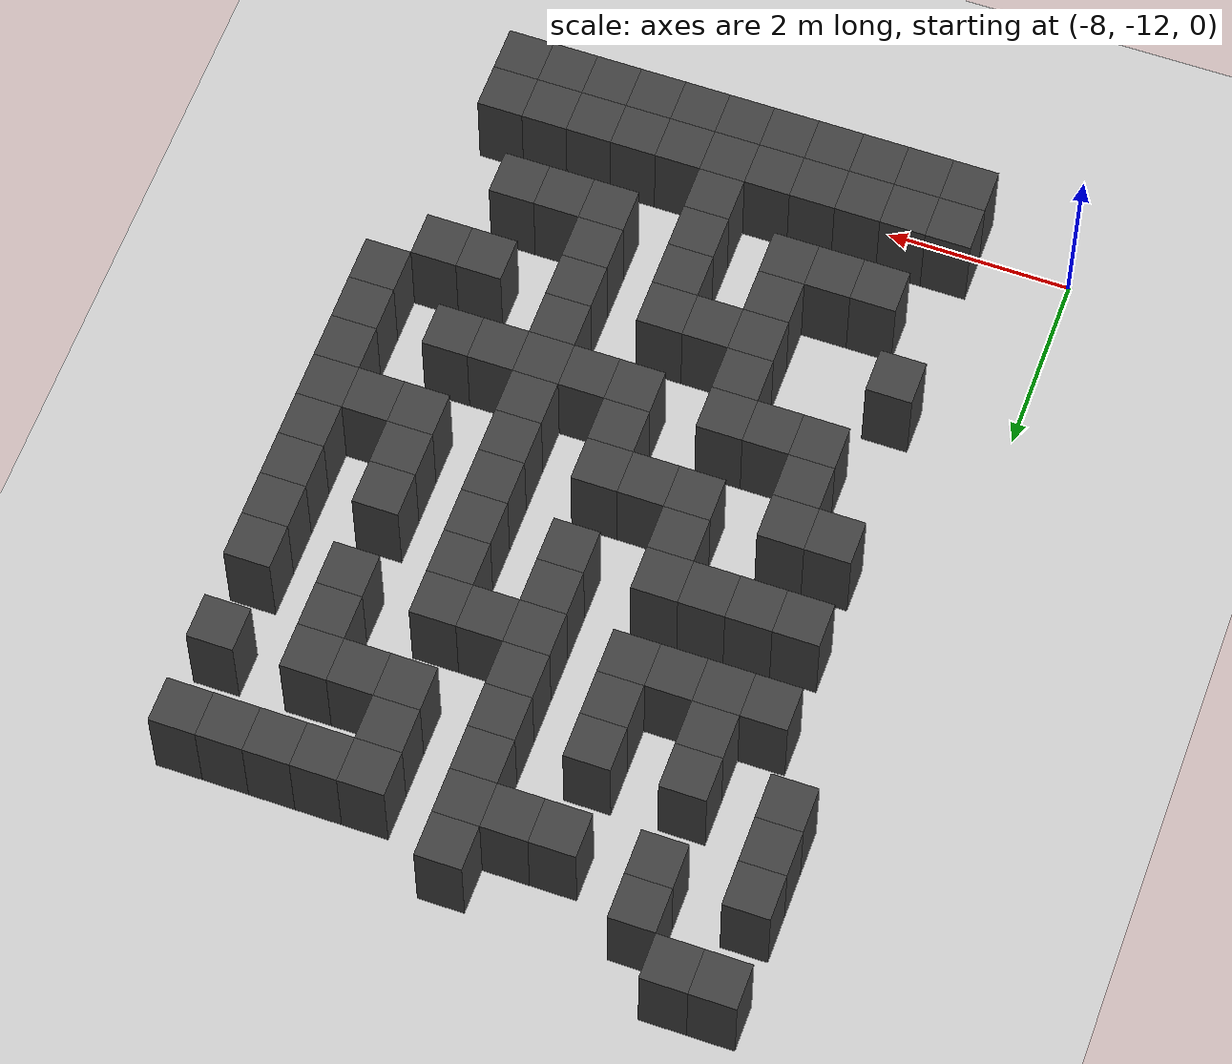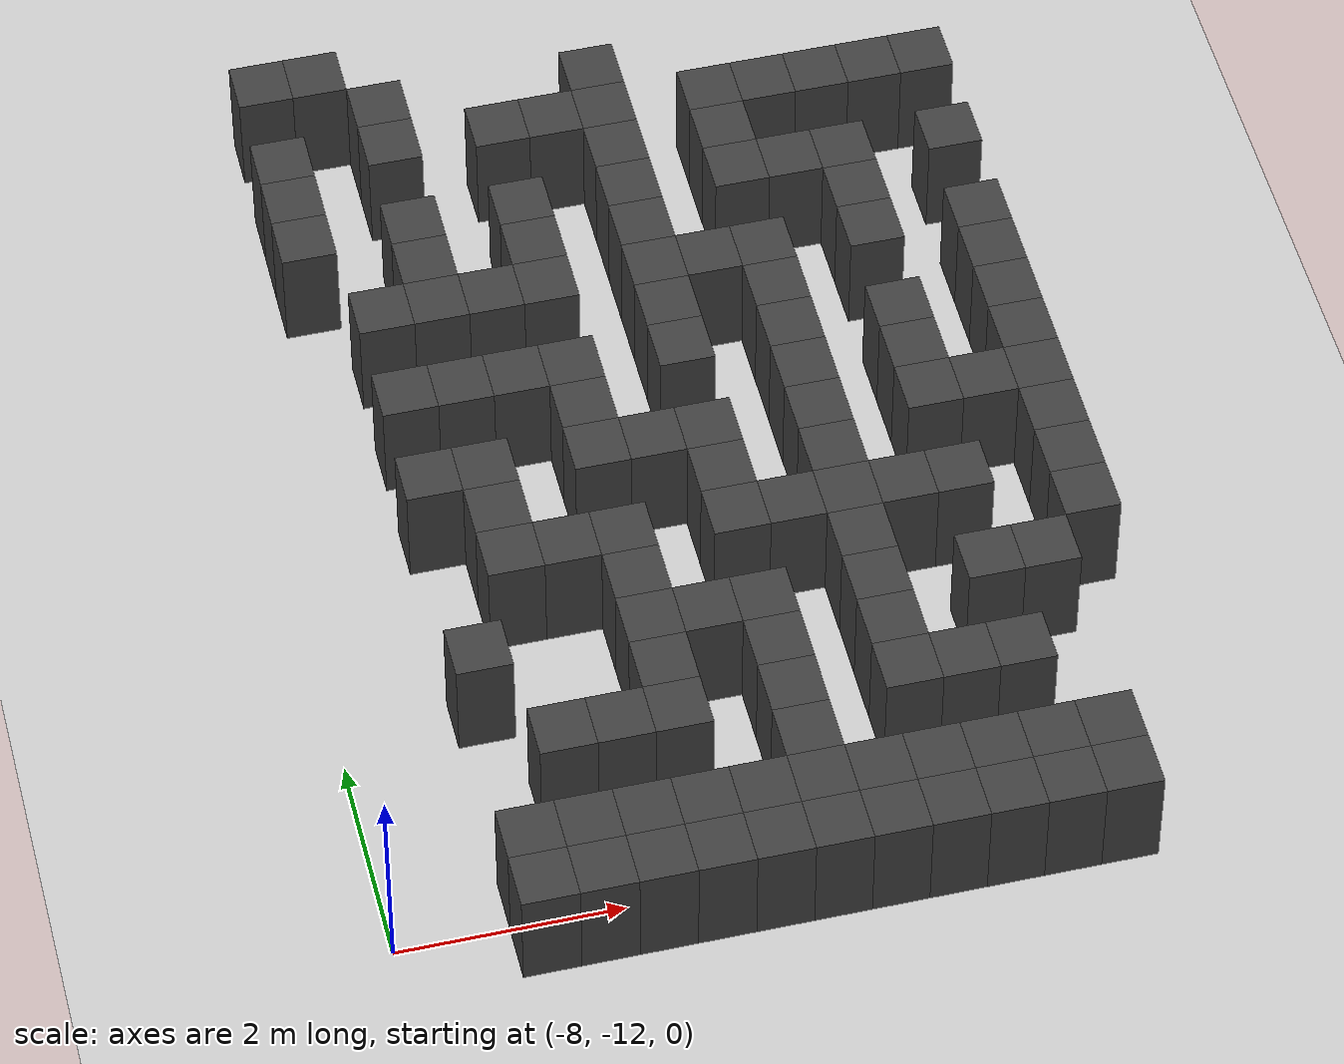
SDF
<sdf version="1.7">
 <world name="map_18313">
  <model name="ground_plane">
   <static>true</static>
   <link name="link">
    <collision name="collision">
     <geometry><plane><normal>0 0 1</normal><size>200 200</size></plane></geometry>
    </collision>
    <visual name="visual">
     <geometry><plane><normal>0 0 1</normal><size>200 200</size></plane></geometry>
     <material><ambient>0.8 0.8 0.8 1</ambient><diffuse>0.8 0.8 0.8 1</diffuse></material>
    </visual>
   </link>
  </model>
  <model name="maze_environment">
   <static>true</static>
   <link name="wall_760">
    <pose>-7.250 -2.750 0.500 0 0 0</pose>
    <collision name="col"><geometry><box><size>0.5 0.5 1.0</size></box></geometry></collision>
    <visual name="vis">
     <geometry><box><size>0.5 0.5 1.0</size></box></geometry>
     <material><ambient>0.15 0.15 0.15 1</ambient><diffuse>0.25 0.25 0.25 1</diffuse></material>
    </visual>
   </link>
   <link name="wall_761">
    <pose>-6.750 -2.750 0.500 0 0 0</pose>
    <collision name="col"><geometry><box><size>0.5 0.5 1.0</size></box></geometry></collision>
    <visual name="vis">
     <geometry><box><size>0.5 0.5 1.0</size></box></geometry>
     <material><ambient>0.15 0.15 0.15 1</ambient><diffuse>0.25 0.25 0.25 1</diffuse></material>
    </visual>
   </link>
   <link name="wall_796">
    <pose>-6.250 -3.250 0.500 0 0 0</pose>
    <collision name="col"><geometry><box><size>0.5 0.5 1.0</size></box></geometry></collision>
    <visual name="vis">
     <geometry><box><size>0.5 0.5 1.0</size></box></geometry>
     <material><ambient>0.15 0.15 0.15 1</ambient><diffuse>0.25 0.25 0.25 1</diffuse></material>
    </visual>
   </link>
   <link name="wall_797">
    <pose>-4.250 -3.250 0.500 0 0 0</pose>
    <collision name="col"><geometry><box><size>0.5 0.5 1.0</size></box></geometry></collision>
    <visual name="vis">
     <geometry><box><size>0.5 0.5 1.0</size></box></geometry>
     <material><ambient>0.15 0.15 0.15 1</ambient><diffuse>0.25 0.25 0.25 1</diffuse></material>
    </visual>
   </link>
   <link name="wall_811">
    <pose>-7.250 -3.750 0.500 0 0 0</pose>
    <collision name="col"><geometry><box><size>0.5 0.5 1.0</size></box></geometry></collision>
    <visual name="vis">
     <geometry><box><size>0.5 0.5 1.0</size></box></geometry>
     <material><ambient>0.15 0.15 0.15 1</ambient><diffuse>0.25 0.25 0.25 1</diffuse></material>
    </visual>
   </link>
   <link name="wall_812">
    <pose>-6.250 -3.750 0.500 0 0 0</pose>
    <collision name="col"><geometry><box><size>0.5 0.5 1.0</size></box></geometry></collision>
    <visual name="vis">
     <geometry><box><size>0.5 0.5 1.0</size></box></geometry>
     <material><ambient>0.15 0.15 0.15 1</ambient><diffuse>0.25 0.25 0.25 1</diffuse></material>
    </visual>
   </link>
   <link name="wall_813">
    <pose>-5.250 -3.750 0.500 0 0 0</pose>
    <collision name="col"><geometry><box><size>0.5 0.5 1.0</size></box></geometry></collision>
    <visual name="vis">
     <geometry><box><size>0.5 0.5 1.0</size></box></geometry>
     <material><ambient>0.15 0.15 0.15 1</ambient><diffuse>0.25 0.25 0.25 1</diffuse></material>
    </visual>
   </link>
   <link name="wall_814">
    <pose>-4.750 -3.750 0.500 0 0 0</pose>
    <collision name="col"><geometry><box><size>0.5 0.5 1.0</size></box></geometry></collision>
    <visual name="vis">
     <geometry><box><size>0.5 0.5 1.0</size></box></geometry>
     <material><ambient>0.15 0.15 0.15 1</ambient><diffuse>0.25 0.25 0.25 1</diffuse></material>
    </visual>
   </link>
   <link name="wall_815">
    <pose>-4.250 -3.750 0.500 0 0 0</pose>
    <collision name="col"><geometry><box><size>0.5 0.5 1.0</size></box></geometry></collision>
    <visual name="vis">
     <geometry><box><size>0.5 0.5 1.0</size></box></geometry>
     <material><ambient>0.15 0.15 0.15 1</ambient><diffuse>0.25 0.25 0.25 1</diffuse></material>
    </visual>
   </link>
   <link name="wall_816">
    <pose>-3.250 -3.750 0.500 0 0 0</pose>
    <collision name="col"><geometry><box><size>0.5 0.5 1.0</size></box></geometry></collision>
    <visual name="vis">
     <geometry><box><size>0.5 0.5 1.0</size></box></geometry>
     <material><ambient>0.15 0.15 0.15 1</ambient><diffuse>0.25 0.25 0.25 1</diffuse></material>
    </visual>
   </link>
   <link name="wall_817">
    <pose>-2.750 -3.750 0.500 0 0 0</pose>
    <collision name="col"><geometry><box><size>0.5 0.5 1.0</size></box></geometry></collision>
    <visual name="vis">
     <geometry><box><size>0.5 0.5 1.0</size></box></geometry>
     <material><ambient>0.15 0.15 0.15 1</ambient><diffuse>0.25 0.25 0.25 1</diffuse></material>
    </visual>
   </link>
   <link name="wall_818">
    <pose>-2.250 -3.750 0.500 0 0 0</pose>
    <collision name="col"><geometry><box><size>0.5 0.5 1.0</size></box></geometry></collision>
    <visual name="vis">
     <geometry><box><size>0.5 0.5 1.0</size></box></geometry>
     <material><ambient>0.15 0.15 0.15 1</ambient><diffuse>0.25 0.25 0.25 1</diffuse></material>
    </visual>
   </link>
   <link name="wall_819">
    <pose>-1.750 -3.750 0.500 0 0 0</pose>
    <collision name="col"><geometry><box><size>0.5 0.5 1.0</size></box></geometry></collision>
    <visual name="vis">
     <geometry><box><size>0.5 0.5 1.0</size></box></geometry>
     <material><ambient>0.15 0.15 0.15 1</ambient><diffuse>0.25 0.25 0.25 1</diffuse></material>
    </visual>
   </link>
   <link name="wall_820">
    <pose>-1.250 -3.750 0.500 0 0 0</pose>
    <collision name="col"><geometry><box><size>0.5 0.5 1.0</size></box></geometry></collision>
    <visual name="vis">
     <geometry><box><size>0.5 0.5 1.0</size></box></geometry>
     <material><ambient>0.15 0.15 0.15 1</ambient><diffuse>0.25 0.25 0.25 1</diffuse></material>
    </visual>
   </link>
   <link name="wall_844">
    <pose>-7.250 -4.250 0.500 0 0 0</pose>
    <collision name="col"><geometry><box><size>0.5 0.5 1.0</size></box></geometry></collision>
    <visual name="vis">
     <geometry><box><size>0.5 0.5 1.0</size></box></geometry>
     <material><ambient>0.15 0.15 0.15 1</ambient><diffuse>0.25 0.25 0.25 1</diffuse></material>
    </visual>
   </link>
   <link name="wall_845">
    <pose>-4.250 -4.250 0.500 0 0 0</pose>
    <collision name="col"><geometry><box><size>0.5 0.5 1.0</size></box></geometry></collision>
    <visual name="vis">
     <geometry><box><size>0.5 0.5 1.0</size></box></geometry>
     <material><ambient>0.15 0.15 0.15 1</ambient><diffuse>0.25 0.25 0.25 1</diffuse></material>
    </visual>
   </link>
   <link name="wall_846">
    <pose>-3.250 -4.250 0.500 0 0 0</pose>
    <collision name="col"><geometry><box><size>0.5 0.5 1.0</size></box></geometry></collision>
    <visual name="vis">
     <geometry><box><size>0.5 0.5 1.0</size></box></geometry>
     <material><ambient>0.15 0.15 0.15 1</ambient><diffuse>0.25 0.25 0.25 1</diffuse></material>
    </visual>
   </link>
   <link name="wall_861">
    <pose>-7.250 -4.750 0.500 0 0 0</pose>
    <collision name="col"><geometry><box><size>0.5 0.5 1.0</size></box></geometry></collision>
    <visual name="vis">
     <geometry><box><size>0.5 0.5 1.0</size></box></geometry>
     <material><ambient>0.15 0.15 0.15 1</ambient><diffuse>0.25 0.25 0.25 1</diffuse></material>
    </visual>
   </link>
   <link name="wall_862">
    <pose>-6.250 -4.750 0.500 0 0 0</pose>
    <collision name="col"><geometry><box><size>0.5 0.5 1.0</size></box></geometry></collision>
    <visual name="vis">
     <geometry><box><size>0.5 0.5 1.0</size></box></geometry>
     <material><ambient>0.15 0.15 0.15 1</ambient><diffuse>0.25 0.25 0.25 1</diffuse></material>
    </visual>
   </link>
   <link name="wall_863">
    <pose>-5.250 -4.750 0.500 0 0 0</pose>
    <collision name="col"><geometry><box><size>0.5 0.5 1.0</size></box></geometry></collision>
    <visual name="vis">
     <geometry><box><size>0.5 0.5 1.0</size></box></geometry>
     <material><ambient>0.15 0.15 0.15 1</ambient><diffuse>0.25 0.25 0.25 1</diffuse></material>
    </visual>
   </link>
   <link name="wall_864">
    <pose>-4.250 -4.750 0.500 0 0 0</pose>
    <collision name="col"><geometry><box><size>0.5 0.5 1.0</size></box></geometry></collision>
    <visual name="vis">
     <geometry><box><size>0.5 0.5 1.0</size></box></geometry>
     <material><ambient>0.15 0.15 0.15 1</ambient><diffuse>0.25 0.25 0.25 1</diffuse></material>
    </visual>
   </link>
   <link name="wall_865">
    <pose>-3.250 -4.750 0.500 0 0 0</pose>
    <collision name="col"><geometry><box><size>0.5 0.5 1.0</size></box></geometry></collision>
    <visual name="vis">
     <geometry><box><size>0.5 0.5 1.0</size></box></geometry>
     <material><ambient>0.15 0.15 0.15 1</ambient><diffuse>0.25 0.25 0.25 1</diffuse></material>
    </visual>
   </link>
   <link name="wall_866">
    <pose>-2.750 -4.750 0.500 0 0 0</pose>
    <collision name="col"><geometry><box><size>0.5 0.5 1.0</size></box></geometry></collision>
    <visual name="vis">
     <geometry><box><size>0.5 0.5 1.0</size></box></geometry>
     <material><ambient>0.15 0.15 0.15 1</ambient><diffuse>0.25 0.25 0.25 1</diffuse></material>
    </visual>
   </link>
   <link name="wall_867">
    <pose>-2.250 -4.750 0.500 0 0 0</pose>
    <collision name="col"><geometry><box><size>0.5 0.5 1.0</size></box></geometry></collision>
    <visual name="vis">
     <geometry><box><size>0.5 0.5 1.0</size></box></geometry>
     <material><ambient>0.15 0.15 0.15 1</ambient><diffuse>0.25 0.25 0.25 1</diffuse></material>
    </visual>
   </link>
   <link name="wall_868">
    <pose>-1.250 -4.750 0.500 0 0 0</pose>
    <collision name="col"><geometry><box><size>0.5 0.5 1.0</size></box></geometry></collision>
    <visual name="vis">
     <geometry><box><size>0.5 0.5 1.0</size></box></geometry>
     <material><ambient>0.15 0.15 0.15 1</ambient><diffuse>0.25 0.25 0.25 1</diffuse></material>
    </visual>
   </link>
   <link name="wall_893">
    <pose>-6.250 -5.250 0.500 0 0 0</pose>
    <collision name="col"><geometry><box><size>0.5 0.5 1.0</size></box></geometry></collision>
    <visual name="vis">
     <geometry><box><size>0.5 0.5 1.0</size></box></geometry>
     <material><ambient>0.15 0.15 0.15 1</ambient><diffuse>0.25 0.25 0.25 1</diffuse></material>
    </visual>
   </link>
   <link name="wall_894">
    <pose>-5.250 -5.250 0.500 0 0 0</pose>
    <collision name="col"><geometry><box><size>0.5 0.5 1.0</size></box></geometry></collision>
    <visual name="vis">
     <geometry><box><size>0.5 0.5 1.0</size></box></geometry>
     <material><ambient>0.15 0.15 0.15 1</ambient><diffuse>0.25 0.25 0.25 1</diffuse></material>
    </visual>
   </link>
   <link name="wall_895">
    <pose>-4.250 -5.250 0.500 0 0 0</pose>
    <collision name="col"><geometry><box><size>0.5 0.5 1.0</size></box></geometry></collision>
    <visual name="vis">
     <geometry><box><size>0.5 0.5 1.0</size></box></geometry>
     <material><ambient>0.15 0.15 0.15 1</ambient><diffuse>0.25 0.25 0.25 1</diffuse></material>
    </visual>
   </link>
   <link name="wall_896">
    <pose>-2.250 -5.250 0.500 0 0 0</pose>
    <collision name="col"><geometry><box><size>0.5 0.5 1.0</size></box></geometry></collision>
    <visual name="vis">
     <geometry><box><size>0.5 0.5 1.0</size></box></geometry>
     <material><ambient>0.15 0.15 0.15 1</ambient><diffuse>0.25 0.25 0.25 1</diffuse></material>
    </visual>
   </link>
   <link name="wall_911">
    <pose>-6.750 -5.750 0.500 0 0 0</pose>
    <collision name="col"><geometry><box><size>0.5 0.5 1.0</size></box></geometry></collision>
    <visual name="vis">
     <geometry><box><size>0.5 0.5 1.0</size></box></geometry>
     <material><ambient>0.15 0.15 0.15 1</ambient><diffuse>0.25 0.25 0.25 1</diffuse></material>
    </visual>
   </link>
   <link name="wall_912">
    <pose>-6.250 -5.750 0.500 0 0 0</pose>
    <collision name="col"><geometry><box><size>0.5 0.5 1.0</size></box></geometry></collision>
    <visual name="vis">
     <geometry><box><size>0.5 0.5 1.0</size></box></geometry>
     <material><ambient>0.15 0.15 0.15 1</ambient><diffuse>0.25 0.25 0.25 1</diffuse></material>
    </visual>
   </link>
   <link name="wall_913">
    <pose>-5.750 -5.750 0.500 0 0 0</pose>
    <collision name="col"><geometry><box><size>0.5 0.5 1.0</size></box></geometry></collision>
    <visual name="vis">
     <geometry><box><size>0.5 0.5 1.0</size></box></geometry>
     <material><ambient>0.15 0.15 0.15 1</ambient><diffuse>0.25 0.25 0.25 1</diffuse></material>
    </visual>
   </link>
   <link name="wall_914">
    <pose>-5.250 -5.750 0.500 0 0 0</pose>
    <collision name="col"><geometry><box><size>0.5 0.5 1.0</size></box></geometry></collision>
    <visual name="vis">
     <geometry><box><size>0.5 0.5 1.0</size></box></geometry>
     <material><ambient>0.15 0.15 0.15 1</ambient><diffuse>0.25 0.25 0.25 1</diffuse></material>
    </visual>
   </link>
   <link name="wall_915">
    <pose>-4.250 -5.750 0.500 0 0 0</pose>
    <collision name="col"><geometry><box><size>0.5 0.5 1.0</size></box></geometry></collision>
    <visual name="vis">
     <geometry><box><size>0.5 0.5 1.0</size></box></geometry>
     <material><ambient>0.15 0.15 0.15 1</ambient><diffuse>0.25 0.25 0.25 1</diffuse></material>
    </visual>
   </link>
   <link name="wall_916">
    <pose>-3.750 -5.750 0.500 0 0 0</pose>
    <collision name="col"><geometry><box><size>0.5 0.5 1.0</size></box></geometry></collision>
    <visual name="vis">
     <geometry><box><size>0.5 0.5 1.0</size></box></geometry>
     <material><ambient>0.15 0.15 0.15 1</ambient><diffuse>0.25 0.25 0.25 1</diffuse></material>
    </visual>
   </link>
   <link name="wall_917">
    <pose>-3.250 -5.750 0.500 0 0 0</pose>
    <collision name="col"><geometry><box><size>0.5 0.5 1.0</size></box></geometry></collision>
    <visual name="vis">
     <geometry><box><size>0.5 0.5 1.0</size></box></geometry>
     <material><ambient>0.15 0.15 0.15 1</ambient><diffuse>0.25 0.25 0.25 1</diffuse></material>
    </visual>
   </link>
   <link name="wall_918">
    <pose>-2.250 -5.750 0.500 0 0 0</pose>
    <collision name="col"><geometry><box><size>0.5 0.5 1.0</size></box></geometry></collision>
    <visual name="vis">
     <geometry><box><size>0.5 0.5 1.0</size></box></geometry>
     <material><ambient>0.15 0.15 0.15 1</ambient><diffuse>0.25 0.25 0.25 1</diffuse></material>
    </visual>
   </link>
   <link name="wall_919">
    <pose>-1.250 -5.750 0.500 0 0 0</pose>
    <collision name="col"><geometry><box><size>0.5 0.5 1.0</size></box></geometry></collision>
    <visual name="vis">
     <geometry><box><size>0.5 0.5 1.0</size></box></geometry>
     <material><ambient>0.15 0.15 0.15 1</ambient><diffuse>0.25 0.25 0.25 1</diffuse></material>
    </visual>
   </link>
   <link name="wall_944">
    <pose>-4.250 -6.250 0.500 0 0 0</pose>
    <collision name="col"><geometry><box><size>0.5 0.5 1.0</size></box></geometry></collision>
    <visual name="vis">
     <geometry><box><size>0.5 0.5 1.0</size></box></geometry>
     <material><ambient>0.15 0.15 0.15 1</ambient><diffuse>0.25 0.25 0.25 1</diffuse></material>
    </visual>
   </link>
   <link name="wall_945">
    <pose>-3.250 -6.250 0.500 0 0 0</pose>
    <collision name="col"><geometry><box><size>0.5 0.5 1.0</size></box></geometry></collision>
    <visual name="vis">
     <geometry><box><size>0.5 0.5 1.0</size></box></geometry>
     <material><ambient>0.15 0.15 0.15 1</ambient><diffuse>0.25 0.25 0.25 1</diffuse></material>
    </visual>
   </link>
   <link name="wall_946">
    <pose>-1.250 -6.250 0.500 0 0 0</pose>
    <collision name="col"><geometry><box><size>0.5 0.5 1.0</size></box></geometry></collision>
    <visual name="vis">
     <geometry><box><size>0.5 0.5 1.0</size></box></geometry>
     <material><ambient>0.15 0.15 0.15 1</ambient><diffuse>0.25 0.25 0.25 1</diffuse></material>
    </visual>
   </link>
   <link name="wall_962">
    <pose>-6.750 -6.750 0.500 0 0 0</pose>
    <collision name="col"><geometry><box><size>0.5 0.5 1.0</size></box></geometry></collision>
    <visual name="vis">
     <geometry><box><size>0.5 0.5 1.0</size></box></geometry>
     <material><ambient>0.15 0.15 0.15 1</ambient><diffuse>0.25 0.25 0.25 1</diffuse></material>
    </visual>
   </link>
   <link name="wall_963">
    <pose>-6.250 -6.750 0.500 0 0 0</pose>
    <collision name="col"><geometry><box><size>0.5 0.5 1.0</size></box></geometry></collision>
    <visual name="vis">
     <geometry><box><size>0.5 0.5 1.0</size></box></geometry>
     <material><ambient>0.15 0.15 0.15 1</ambient><diffuse>0.25 0.25 0.25 1</diffuse></material>
    </visual>
   </link>
   <link name="wall_964">
    <pose>-5.750 -6.750 0.500 0 0 0</pose>
    <collision name="col"><geometry><box><size>0.5 0.5 1.0</size></box></geometry></collision>
    <visual name="vis">
     <geometry><box><size>0.5 0.5 1.0</size></box></geometry>
     <material><ambient>0.15 0.15 0.15 1</ambient><diffuse>0.25 0.25 0.25 1</diffuse></material>
    </visual>
   </link>
   <link name="wall_965">
    <pose>-5.250 -6.750 0.500 0 0 0</pose>
    <collision name="col"><geometry><box><size>0.5 0.5 1.0</size></box></geometry></collision>
    <visual name="vis">
     <geometry><box><size>0.5 0.5 1.0</size></box></geometry>
     <material><ambient>0.15 0.15 0.15 1</ambient><diffuse>0.25 0.25 0.25 1</diffuse></material>
    </visual>
   </link>
   <link name="wall_966">
    <pose>-4.250 -6.750 0.500 0 0 0</pose>
    <collision name="col"><geometry><box><size>0.5 0.5 1.0</size></box></geometry></collision>
    <visual name="vis">
     <geometry><box><size>0.5 0.5 1.0</size></box></geometry>
     <material><ambient>0.15 0.15 0.15 1</ambient><diffuse>0.25 0.25 0.25 1</diffuse></material>
    </visual>
   </link>
   <link name="wall_967">
    <pose>-3.250 -6.750 0.500 0 0 0</pose>
    <collision name="col"><geometry><box><size>0.5 0.5 1.0</size></box></geometry></collision>
    <visual name="vis">
     <geometry><box><size>0.5 0.5 1.0</size></box></geometry>
     <material><ambient>0.15 0.15 0.15 1</ambient><diffuse>0.25 0.25 0.25 1</diffuse></material>
    </visual>
   </link>
   <link name="wall_968">
    <pose>-2.250 -6.750 0.500 0 0 0</pose>
    <collision name="col"><geometry><box><size>0.5 0.5 1.0</size></box></geometry></collision>
    <visual name="vis">
     <geometry><box><size>0.5 0.5 1.0</size></box></geometry>
     <material><ambient>0.15 0.15 0.15 1</ambient><diffuse>0.25 0.25 0.25 1</diffuse></material>
    </visual>
   </link>
   <link name="wall_969">
    <pose>-1.250 -6.750 0.500 0 0 0</pose>
    <collision name="col"><geometry><box><size>0.5 0.5 1.0</size></box></geometry></collision>
    <visual name="vis">
     <geometry><box><size>0.5 0.5 1.0</size></box></geometry>
     <material><ambient>0.15 0.15 0.15 1</ambient><diffuse>0.25 0.25 0.25 1</diffuse></material>
    </visual>
   </link>
   <link name="wall_992">
    <pose>-5.250 -7.250 0.500 0 0 0</pose>
    <collision name="col"><geometry><box><size>0.5 0.5 1.0</size></box></geometry></collision>
    <visual name="vis">
     <geometry><box><size>0.5 0.5 1.0</size></box></geometry>
     <material><ambient>0.15 0.15 0.15 1</ambient><diffuse>0.25 0.25 0.25 1</diffuse></material>
    </visual>
   </link>
   <link name="wall_993">
    <pose>-3.250 -7.250 0.500 0 0 0</pose>
    <collision name="col"><geometry><box><size>0.5 0.5 1.0</size></box></geometry></collision>
    <visual name="vis">
     <geometry><box><size>0.5 0.5 1.0</size></box></geometry>
     <material><ambient>0.15 0.15 0.15 1</ambient><diffuse>0.25 0.25 0.25 1</diffuse></material>
    </visual>
   </link>
   <link name="wall_994">
    <pose>-2.250 -7.250 0.500 0 0 0</pose>
    <collision name="col"><geometry><box><size>0.5 0.5 1.0</size></box></geometry></collision>
    <visual name="vis">
     <geometry><box><size>0.5 0.5 1.0</size></box></geometry>
     <material><ambient>0.15 0.15 0.15 1</ambient><diffuse>0.25 0.25 0.25 1</diffuse></material>
    </visual>
   </link>
   <link name="wall_995">
    <pose>-1.250 -7.250 0.500 0 0 0</pose>
    <collision name="col"><geometry><box><size>0.5 0.5 1.0</size></box></geometry></collision>
    <visual name="vis">
     <geometry><box><size>0.5 0.5 1.0</size></box></geometry>
     <material><ambient>0.15 0.15 0.15 1</ambient><diffuse>0.25 0.25 0.25 1</diffuse></material>
    </visual>
   </link>
   <link name="wall_1010">
    <pose>-6.750 -7.750 0.500 0 0 0</pose>
    <collision name="col"><geometry><box><size>0.5 0.5 1.0</size></box></geometry></collision>
    <visual name="vis">
     <geometry><box><size>0.5 0.5 1.0</size></box></geometry>
     <material><ambient>0.15 0.15 0.15 1</ambient><diffuse>0.25 0.25 0.25 1</diffuse></material>
    </visual>
   </link>
   <link name="wall_1011">
    <pose>-6.250 -7.750 0.500 0 0 0</pose>
    <collision name="col"><geometry><box><size>0.5 0.5 1.0</size></box></geometry></collision>
    <visual name="vis">
     <geometry><box><size>0.5 0.5 1.0</size></box></geometry>
     <material><ambient>0.15 0.15 0.15 1</ambient><diffuse>0.25 0.25 0.25 1</diffuse></material>
    </visual>
   </link>
   <link name="wall_1012">
    <pose>-5.250 -7.750 0.500 0 0 0</pose>
    <collision name="col"><geometry><box><size>0.5 0.5 1.0</size></box></geometry></collision>
    <visual name="vis">
     <geometry><box><size>0.5 0.5 1.0</size></box></geometry>
     <material><ambient>0.15 0.15 0.15 1</ambient><diffuse>0.25 0.25 0.25 1</diffuse></material>
    </visual>
   </link>
   <link name="wall_1013">
    <pose>-4.750 -7.750 0.500 0 0 0</pose>
    <collision name="col"><geometry><box><size>0.5 0.5 1.0</size></box></geometry></collision>
    <visual name="vis">
     <geometry><box><size>0.5 0.5 1.0</size></box></geometry>
     <material><ambient>0.15 0.15 0.15 1</ambient><diffuse>0.25 0.25 0.25 1</diffuse></material>
    </visual>
   </link>
   <link name="wall_1014">
    <pose>-4.250 -7.750 0.500 0 0 0</pose>
    <collision name="col"><geometry><box><size>0.5 0.5 1.0</size></box></geometry></collision>
    <visual name="vis">
     <geometry><box><size>0.5 0.5 1.0</size></box></geometry>
     <material><ambient>0.15 0.15 0.15 1</ambient><diffuse>0.25 0.25 0.25 1</diffuse></material>
    </visual>
   </link>
   <link name="wall_1015">
    <pose>-3.250 -7.750 0.500 0 0 0</pose>
    <collision name="col"><geometry><box><size>0.5 0.5 1.0</size></box></geometry></collision>
    <visual name="vis">
     <geometry><box><size>0.5 0.5 1.0</size></box></geometry>
     <material><ambient>0.15 0.15 0.15 1</ambient><diffuse>0.25 0.25 0.25 1</diffuse></material>
    </visual>
   </link>
   <link name="wall_1016">
    <pose>-2.250 -7.750 0.500 0 0 0</pose>
    <collision name="col"><geometry><box><size>0.5 0.5 1.0</size></box></geometry></collision>
    <visual name="vis">
     <geometry><box><size>0.5 0.5 1.0</size></box></geometry>
     <material><ambient>0.15 0.15 0.15 1</ambient><diffuse>0.25 0.25 0.25 1</diffuse></material>
    </visual>
   </link>
   <link name="wall_1017">
    <pose>-1.750 -7.750 0.500 0 0 0</pose>
    <collision name="col"><geometry><box><size>0.5 0.5 1.0</size></box></geometry></collision>
    <visual name="vis">
     <geometry><box><size>0.5 0.5 1.0</size></box></geometry>
     <material><ambient>0.15 0.15 0.15 1</ambient><diffuse>0.25 0.25 0.25 1</diffuse></material>
    </visual>
   </link>
   <link name="wall_1018">
    <pose>-1.250 -7.750 0.500 0 0 0</pose>
    <collision name="col"><geometry><box><size>0.5 0.5 1.0</size></box></geometry></collision>
    <visual name="vis">
     <geometry><box><size>0.5 0.5 1.0</size></box></geometry>
     <material><ambient>0.15 0.15 0.15 1</ambient><diffuse>0.25 0.25 0.25 1</diffuse></material>
    </visual>
   </link>
   <link name="wall_1040">
    <pose>-6.250 -8.250 0.500 0 0 0</pose>
    <collision name="col"><geometry><box><size>0.5 0.5 1.0</size></box></geometry></collision>
    <visual name="vis">
     <geometry><box><size>0.5 0.5 1.0</size></box></geometry>
     <material><ambient>0.15 0.15 0.15 1</ambient><diffuse>0.25 0.25 0.25 1</diffuse></material>
    </visual>
   </link>
   <link name="wall_1041">
    <pose>-4.250 -8.250 0.500 0 0 0</pose>
    <collision name="col"><geometry><box><size>0.5 0.5 1.0</size></box></geometry></collision>
    <visual name="vis">
     <geometry><box><size>0.5 0.5 1.0</size></box></geometry>
     <material><ambient>0.15 0.15 0.15 1</ambient><diffuse>0.25 0.25 0.25 1</diffuse></material>
    </visual>
   </link>
   <link name="wall_1042">
    <pose>-3.250 -8.250 0.500 0 0 0</pose>
    <collision name="col"><geometry><box><size>0.5 0.5 1.0</size></box></geometry></collision>
    <visual name="vis">
     <geometry><box><size>0.5 0.5 1.0</size></box></geometry>
     <material><ambient>0.15 0.15 0.15 1</ambient><diffuse>0.25 0.25 0.25 1</diffuse></material>
    </visual>
   </link>
   <link name="wall_1043">
    <pose>-1.250 -8.250 0.500 0 0 0</pose>
    <collision name="col"><geometry><box><size>0.5 0.5 1.0</size></box></geometry></collision>
    <visual name="vis">
     <geometry><box><size>0.5 0.5 1.0</size></box></geometry>
     <material><ambient>0.15 0.15 0.15 1</ambient><diffuse>0.25 0.25 0.25 1</diffuse></material>
    </visual>
   </link>
   <link name="wall_1060">
    <pose>-6.250 -8.750 0.500 0 0 0</pose>
    <collision name="col"><geometry><box><size>0.5 0.5 1.0</size></box></geometry></collision>
    <visual name="vis">
     <geometry><box><size>0.5 0.5 1.0</size></box></geometry>
     <material><ambient>0.15 0.15 0.15 1</ambient><diffuse>0.25 0.25 0.25 1</diffuse></material>
    </visual>
   </link>
   <link name="wall_1061">
    <pose>-5.750 -8.750 0.500 0 0 0</pose>
    <collision name="col"><geometry><box><size>0.5 0.5 1.0</size></box></geometry></collision>
    <visual name="vis">
     <geometry><box><size>0.5 0.5 1.0</size></box></geometry>
     <material><ambient>0.15 0.15 0.15 1</ambient><diffuse>0.25 0.25 0.25 1</diffuse></material>
    </visual>
   </link>
   <link name="wall_1062">
    <pose>-5.250 -8.750 0.500 0 0 0</pose>
    <collision name="col"><geometry><box><size>0.5 0.5 1.0</size></box></geometry></collision>
    <visual name="vis">
     <geometry><box><size>0.5 0.5 1.0</size></box></geometry>
     <material><ambient>0.15 0.15 0.15 1</ambient><diffuse>0.25 0.25 0.25 1</diffuse></material>
    </visual>
   </link>
   <link name="wall_1063">
    <pose>-4.250 -8.750 0.500 0 0 0</pose>
    <collision name="col"><geometry><box><size>0.5 0.5 1.0</size></box></geometry></collision>
    <visual name="vis">
     <geometry><box><size>0.5 0.5 1.0</size></box></geometry>
     <material><ambient>0.15 0.15 0.15 1</ambient><diffuse>0.25 0.25 0.25 1</diffuse></material>
    </visual>
   </link>
   <link name="wall_1064">
    <pose>-3.750 -8.750 0.500 0 0 0</pose>
    <collision name="col"><geometry><box><size>0.5 0.5 1.0</size></box></geometry></collision>
    <visual name="vis">
     <geometry><box><size>0.5 0.5 1.0</size></box></geometry>
     <material><ambient>0.15 0.15 0.15 1</ambient><diffuse>0.25 0.25 0.25 1</diffuse></material>
    </visual>
   </link>
   <link name="wall_1065">
    <pose>-3.250 -8.750 0.500 0 0 0</pose>
    <collision name="col"><geometry><box><size>0.5 0.5 1.0</size></box></geometry></collision>
    <visual name="vis">
     <geometry><box><size>0.5 0.5 1.0</size></box></geometry>
     <material><ambient>0.15 0.15 0.15 1</ambient><diffuse>0.25 0.25 0.25 1</diffuse></material>
    </visual>
   </link>
   <link name="wall_1066">
    <pose>-2.750 -8.750 0.500 0 0 0</pose>
    <collision name="col"><geometry><box><size>0.5 0.5 1.0</size></box></geometry></collision>
    <visual name="vis">
     <geometry><box><size>0.5 0.5 1.0</size></box></geometry>
     <material><ambient>0.15 0.15 0.15 1</ambient><diffuse>0.25 0.25 0.25 1</diffuse></material>
    </visual>
   </link>
   <link name="wall_1067">
    <pose>-2.250 -8.750 0.500 0 0 0</pose>
    <collision name="col"><geometry><box><size>0.5 0.5 1.0</size></box></geometry></collision>
    <visual name="vis">
     <geometry><box><size>0.5 0.5 1.0</size></box></geometry>
     <material><ambient>0.15 0.15 0.15 1</ambient><diffuse>0.25 0.25 0.25 1</diffuse></material>
    </visual>
   </link>
   <link name="wall_1068">
    <pose>-1.250 -8.750 0.500 0 0 0</pose>
    <collision name="col"><geometry><box><size>0.5 0.5 1.0</size></box></geometry></collision>
    <visual name="vis">
     <geometry><box><size>0.5 0.5 1.0</size></box></geometry>
     <material><ambient>0.15 0.15 0.15 1</ambient><diffuse>0.25 0.25 0.25 1</diffuse></material>
    </visual>
   </link>
   <link name="wall_1087">
    <pose>-5.250 -9.250 0.500 0 0 0</pose>
    <collision name="col"><geometry><box><size>0.5 0.5 1.0</size></box></geometry></collision>
    <visual name="vis">
     <geometry><box><size>0.5 0.5 1.0</size></box></geometry>
     <material><ambient>0.15 0.15 0.15 1</ambient><diffuse>0.25 0.25 0.25 1</diffuse></material>
    </visual>
   </link>
   <link name="wall_1088">
    <pose>-3.250 -9.250 0.500 0 0 0</pose>
    <collision name="col"><geometry><box><size>0.5 0.5 1.0</size></box></geometry></collision>
    <visual name="vis">
     <geometry><box><size>0.5 0.5 1.0</size></box></geometry>
     <material><ambient>0.15 0.15 0.15 1</ambient><diffuse>0.25 0.25 0.25 1</diffuse></material>
    </visual>
   </link>
   <link name="wall_1089">
    <pose>-1.250 -9.250 0.500 0 0 0</pose>
    <collision name="col"><geometry><box><size>0.5 0.5 1.0</size></box></geometry></collision>
    <visual name="vis">
     <geometry><box><size>0.5 0.5 1.0</size></box></geometry>
     <material><ambient>0.15 0.15 0.15 1</ambient><diffuse>0.25 0.25 0.25 1</diffuse></material>
    </visual>
   </link>
   <link name="wall_1110">
    <pose>-6.750 -9.750 0.500 0 0 0</pose>
    <collision name="col"><geometry><box><size>0.5 0.5 1.0</size></box></geometry></collision>
    <visual name="vis">
     <geometry><box><size>0.5 0.5 1.0</size></box></geometry>
     <material><ambient>0.15 0.15 0.15 1</ambient><diffuse>0.25 0.25 0.25 1</diffuse></material>
    </visual>
   </link>
   <link name="wall_1111">
    <pose>-5.250 -9.750 0.500 0 0 0</pose>
    <collision name="col"><geometry><box><size>0.5 0.5 1.0</size></box></geometry></collision>
    <visual name="vis">
     <geometry><box><size>0.5 0.5 1.0</size></box></geometry>
     <material><ambient>0.15 0.15 0.15 1</ambient><diffuse>0.25 0.25 0.25 1</diffuse></material>
    </visual>
   </link>
   <link name="wall_1112">
    <pose>-4.750 -9.750 0.500 0 0 0</pose>
    <collision name="col"><geometry><box><size>0.5 0.5 1.0</size></box></geometry></collision>
    <visual name="vis">
     <geometry><box><size>0.5 0.5 1.0</size></box></geometry>
     <material><ambient>0.15 0.15 0.15 1</ambient><diffuse>0.25 0.25 0.25 1</diffuse></material>
    </visual>
   </link>
   <link name="wall_1113">
    <pose>-4.250 -9.750 0.500 0 0 0</pose>
    <collision name="col"><geometry><box><size>0.5 0.5 1.0</size></box></geometry></collision>
    <visual name="vis">
     <geometry><box><size>0.5 0.5 1.0</size></box></geometry>
     <material><ambient>0.15 0.15 0.15 1</ambient><diffuse>0.25 0.25 0.25 1</diffuse></material>
    </visual>
   </link>
   <link name="wall_1114">
    <pose>-3.250 -9.750 0.500 0 0 0</pose>
    <collision name="col"><geometry><box><size>0.5 0.5 1.0</size></box></geometry></collision>
    <visual name="vis">
     <geometry><box><size>0.5 0.5 1.0</size></box></geometry>
     <material><ambient>0.15 0.15 0.15 1</ambient><diffuse>0.25 0.25 0.25 1</diffuse></material>
    </visual>
   </link>
   <link name="wall_1115">
    <pose>-2.250 -9.750 0.500 0 0 0</pose>
    <collision name="col"><geometry><box><size>0.5 0.5 1.0</size></box></geometry></collision>
    <visual name="vis">
     <geometry><box><size>0.5 0.5 1.0</size></box></geometry>
     <material><ambient>0.15 0.15 0.15 1</ambient><diffuse>0.25 0.25 0.25 1</diffuse></material>
    </visual>
   </link>
   <link name="wall_1116">
    <pose>-1.750 -9.750 0.500 0 0 0</pose>
    <collision name="col"><geometry><box><size>0.5 0.5 1.0</size></box></geometry></collision>
    <visual name="vis">
     <geometry><box><size>0.5 0.5 1.0</size></box></geometry>
     <material><ambient>0.15 0.15 0.15 1</ambient><diffuse>0.25 0.25 0.25 1</diffuse></material>
    </visual>
   </link>
   <link name="wall_1142">
    <pose>-5.250 -10.250 0.500 0 0 0</pose>
    <collision name="col"><geometry><box><size>0.5 0.5 1.0</size></box></geometry></collision>
    <visual name="vis">
     <geometry><box><size>0.5 0.5 1.0</size></box></geometry>
     <material><ambient>0.15 0.15 0.15 1</ambient><diffuse>0.25 0.25 0.25 1</diffuse></material>
    </visual>
   </link>
   <link name="wall_1143">
    <pose>-4.250 -10.250 0.500 0 0 0</pose>
    <collision name="col"><geometry><box><size>0.5 0.5 1.0</size></box></geometry></collision>
    <visual name="vis">
     <geometry><box><size>0.5 0.5 1.0</size></box></geometry>
     <material><ambient>0.15 0.15 0.15 1</ambient><diffuse>0.25 0.25 0.25 1</diffuse></material>
    </visual>
   </link>
   <link name="wall_1144">
    <pose>-3.250 -10.250 0.500 0 0 0</pose>
    <collision name="col"><geometry><box><size>0.5 0.5 1.0</size></box></geometry></collision>
    <visual name="vis">
     <geometry><box><size>0.5 0.5 1.0</size></box></geometry>
     <material><ambient>0.15 0.15 0.15 1</ambient><diffuse>0.25 0.25 0.25 1</diffuse></material>
    </visual>
   </link>
   <link name="wall_1160">
    <pose>-6.250 -10.750 0.500 0 0 0</pose>
    <collision name="col"><geometry><box><size>0.5 0.5 1.0</size></box></geometry></collision>
    <visual name="vis">
     <geometry><box><size>0.5 0.5 1.0</size></box></geometry>
     <material><ambient>0.15 0.15 0.15 1</ambient><diffuse>0.25 0.25 0.25 1</diffuse></material>
    </visual>
   </link>
   <link name="wall_1161">
    <pose>-5.750 -10.750 0.500 0 0 0</pose>
    <collision name="col"><geometry><box><size>0.5 0.5 1.0</size></box></geometry></collision>
    <visual name="vis">
     <geometry><box><size>0.5 0.5 1.0</size></box></geometry>
     <material><ambient>0.15 0.15 0.15 1</ambient><diffuse>0.25 0.25 0.25 1</diffuse></material>
    </visual>
   </link>
   <link name="wall_1162">
    <pose>-5.250 -10.750 0.500 0 0 0</pose>
    <collision name="col"><geometry><box><size>0.5 0.5 1.0</size></box></geometry></collision>
    <visual name="vis">
     <geometry><box><size>0.5 0.5 1.0</size></box></geometry>
     <material><ambient>0.15 0.15 0.15 1</ambient><diffuse>0.25 0.25 0.25 1</diffuse></material>
    </visual>
   </link>
   <link name="wall_1163">
    <pose>-4.250 -10.750 0.500 0 0 0</pose>
    <collision name="col"><geometry><box><size>0.5 0.5 1.0</size></box></geometry></collision>
    <visual name="vis">
     <geometry><box><size>0.5 0.5 1.0</size></box></geometry>
     <material><ambient>0.15 0.15 0.15 1</ambient><diffuse>0.25 0.25 0.25 1</diffuse></material>
    </visual>
   </link>
   <link name="wall_1164">
    <pose>-3.250 -10.750 0.500 0 0 0</pose>
    <collision name="col"><geometry><box><size>0.5 0.5 1.0</size></box></geometry></collision>
    <visual name="vis">
     <geometry><box><size>0.5 0.5 1.0</size></box></geometry>
     <material><ambient>0.15 0.15 0.15 1</ambient><diffuse>0.25 0.25 0.25 1</diffuse></material>
    </visual>
   </link>
   <link name="wall_1165">
    <pose>-2.750 -10.750 0.500 0 0 0</pose>
    <collision name="col"><geometry><box><size>0.5 0.5 1.0</size></box></geometry></collision>
    <visual name="vis">
     <geometry><box><size>0.5 0.5 1.0</size></box></geometry>
     <material><ambient>0.15 0.15 0.15 1</ambient><diffuse>0.25 0.25 0.25 1</diffuse></material>
    </visual>
   </link>
   <link name="wall_1166">
    <pose>-2.250 -10.750 0.500 0 0 0</pose>
    <collision name="col"><geometry><box><size>0.5 0.5 1.0</size></box></geometry></collision>
    <visual name="vis">
     <geometry><box><size>0.5 0.5 1.0</size></box></geometry>
     <material><ambient>0.15 0.15 0.15 1</ambient><diffuse>0.25 0.25 0.25 1</diffuse></material>
    </visual>
   </link>
   <link name="wall_1190">
    <pose>-4.250 -11.250 0.500 0 0 0</pose>
    <collision name="col"><geometry><box><size>0.5 0.5 1.0</size></box></geometry></collision>
    <visual name="vis">
     <geometry><box><size>0.5 0.5 1.0</size></box></geometry>
     <material><ambient>0.15 0.15 0.15 1</ambient><diffuse>0.25 0.25 0.25 1</diffuse></material>
    </visual>
   </link>
   <link name="wall_1206">
    <pose>-6.750 -11.750 0.500 0 0 0</pose>
    <collision name="col"><geometry><box><size>0.5 0.5 1.0</size></box></geometry></collision>
    <visual name="vis">
     <geometry><box><size>0.5 0.5 1.0</size></box></geometry>
     <material><ambient>0.15 0.15 0.15 1</ambient><diffuse>0.25 0.25 0.25 1</diffuse></material>
    </visual>
   </link>
   <link name="wall_1207">
    <pose>-6.250 -11.750 0.500 0 0 0</pose>
    <collision name="col"><geometry><box><size>0.5 0.5 1.0</size></box></geometry></collision>
    <visual name="vis">
     <geometry><box><size>0.5 0.5 1.0</size></box></geometry>
     <material><ambient>0.15 0.15 0.15 1</ambient><diffuse>0.25 0.25 0.25 1</diffuse></material>
    </visual>
   </link>
   <link name="wall_1208">
    <pose>-5.750 -11.750 0.500 0 0 0</pose>
    <collision name="col"><geometry><box><size>0.5 0.5 1.0</size></box></geometry></collision>
    <visual name="vis">
     <geometry><box><size>0.5 0.5 1.0</size></box></geometry>
     <material><ambient>0.15 0.15 0.15 1</ambient><diffuse>0.25 0.25 0.25 1</diffuse></material>
    </visual>
   </link>
   <link name="wall_1209">
    <pose>-5.250 -11.750 0.500 0 0 0</pose>
    <collision name="col"><geometry><box><size>0.5 0.5 1.0</size></box></geometry></collision>
    <visual name="vis">
     <geometry><box><size>0.5 0.5 1.0</size></box></geometry>
     <material><ambient>0.15 0.15 0.15 1</ambient><diffuse>0.25 0.25 0.25 1</diffuse></material>
    </visual>
   </link>
   <link name="wall_1210">
    <pose>-4.750 -11.750 0.500 0 0 0</pose>
    <collision name="col"><geometry><box><size>0.5 0.5 1.0</size></box></geometry></collision>
    <visual name="vis">
     <geometry><box><size>0.5 0.5 1.0</size></box></geometry>
     <material><ambient>0.15 0.15 0.15 1</ambient><diffuse>0.25 0.25 0.25 1</diffuse></material>
    </visual>
   </link>
   <link name="wall_1211">
    <pose>-4.250 -11.750 0.500 0 0 0</pose>
    <collision name="col"><geometry><box><size>0.5 0.5 1.0</size></box></geometry></collision>
    <visual name="vis">
     <geometry><box><size>0.5 0.5 1.0</size></box></geometry>
     <material><ambient>0.15 0.15 0.15 1</ambient><diffuse>0.25 0.25 0.25 1</diffuse></material>
    </visual>
   </link>
   <link name="wall_1212">
    <pose>-3.750 -11.750 0.500 0 0 0</pose>
    <collision name="col"><geometry><box><size>0.5 0.5 1.0</size></box></geometry></collision>
    <visual name="vis">
     <geometry><box><size>0.5 0.5 1.0</size></box></geometry>
     <material><ambient>0.15 0.15 0.15 1</ambient><diffuse>0.25 0.25 0.25 1</diffuse></material>
    </visual>
   </link>
   <link name="wall_1213">
    <pose>-3.250 -11.750 0.500 0 0 0</pose>
    <collision name="col"><geometry><box><size>0.5 0.5 1.0</size></box></geometry></collision>
    <visual name="vis">
     <geometry><box><size>0.5 0.5 1.0</size></box></geometry>
     <material><ambient>0.15 0.15 0.15 1</ambient><diffuse>0.25 0.25 0.25 1</diffuse></material>
    </visual>
   </link>
   <link name="wall_1214">
    <pose>-2.750 -11.750 0.500 0 0 0</pose>
    <collision name="col"><geometry><box><size>0.5 0.5 1.0</size></box></geometry></collision>
    <visual name="vis">
     <geometry><box><size>0.5 0.5 1.0</size></box></geometry>
     <material><ambient>0.15 0.15 0.15 1</ambient><diffuse>0.25 0.25 0.25 1</diffuse></material>
    </visual>
   </link>
   <link name="wall_1215">
    <pose>-2.250 -11.750 0.500 0 0 0</pose>
    <collision name="col"><geometry><box><size>0.5 0.5 1.0</size></box></geometry></collision>
    <visual name="vis">
     <geometry><box><size>0.5 0.5 1.0</size></box></geometry>
     <material><ambient>0.15 0.15 0.15 1</ambient><diffuse>0.25 0.25 0.25 1</diffuse></material>
    </visual>
   </link>
   <link name="wall_1216">
    <pose>-1.750 -11.750 0.500 0 0 0</pose>
    <collision name="col"><geometry><box><size>0.5 0.5 1.0</size></box></geometry></collision>
    <visual name="vis">
     <geometry><box><size>0.5 0.5 1.0</size></box></geometry>
     <material><ambient>0.15 0.15 0.15 1</ambient><diffuse>0.25 0.25 0.25 1</diffuse></material>
    </visual>
   </link>
   <link name="wall_1254">
    <pose>-6.750 -12.250 0.500 0 0 0</pose>
    <collision name="col"><geometry><box><size>0.5 0.5 1.0</size></box></geometry></collision>
    <visual name="vis">
     <geometry><box><size>0.5 0.5 1.0</size></box></geometry>
     <material><ambient>0.15 0.15 0.15 1</ambient><diffuse>0.25 0.25 0.25 1</diffuse></material>
    </visual>
   </link>
   <link name="wall_1255">
    <pose>-6.250 -12.250 0.500 0 0 0</pose>
    <collision name="col"><geometry><box><size>0.5 0.5 1.0</size></box></geometry></collision>
    <visual name="vis">
     <geometry><box><size>0.5 0.5 1.0</size></box></geometry>
     <material><ambient>0.15 0.15 0.15 1</ambient><diffuse>0.25 0.25 0.25 1</diffuse></material>
    </visual>
   </link>
   <link name="wall_1256">
    <pose>-5.750 -12.250 0.500 0 0 0</pose>
    <collision name="col"><geometry><box><size>0.5 0.5 1.0</size></box></geometry></collision>
    <visual name="vis">
     <geometry><box><size>0.5 0.5 1.0</size></box></geometry>
     <material><ambient>0.15 0.15 0.15 1</ambient><diffuse>0.25 0.25 0.25 1</diffuse></material>
    </visual>
   </link>
   <link name="wall_1257">
    <pose>-5.250 -12.250 0.500 0 0 0</pose>
    <collision name="col"><geometry><box><size>0.5 0.5 1.0</size></box></geometry></collision>
    <visual name="vis">
     <geometry><box><size>0.5 0.5 1.0</size></box></geometry>
     <material><ambient>0.15 0.15 0.15 1</ambient><diffuse>0.25 0.25 0.25 1</diffuse></material>
    </visual>
   </link>
   <link name="wall_1258">
    <pose>-4.750 -12.250 0.500 0 0 0</pose>
    <collision name="col"><geometry><box><size>0.5 0.5 1.0</size></box></geometry></collision>
    <visual name="vis">
     <geometry><box><size>0.5 0.5 1.0</size></box></geometry>
     <material><ambient>0.15 0.15 0.15 1</ambient><diffuse>0.25 0.25 0.25 1</diffuse></material>
    </visual>
   </link>
   <link name="wall_1259">
    <pose>-4.250 -12.250 0.500 0 0 0</pose>
    <collision name="col"><geometry><box><size>0.5 0.5 1.0</size></box></geometry></collision>
    <visual name="vis">
     <geometry><box><size>0.5 0.5 1.0</size></box></geometry>
     <material><ambient>0.15 0.15 0.15 1</ambient><diffuse>0.25 0.25 0.25 1</diffuse></material>
    </visual>
   </link>
   <link name="wall_1260">
    <pose>-3.750 -12.250 0.500 0 0 0</pose>
    <collision name="col"><geometry><box><size>0.5 0.5 1.0</size></box></geometry></collision>
    <visual name="vis">
     <geometry><box><size>0.5 0.5 1.0</size></box></geometry>
     <material><ambient>0.15 0.15 0.15 1</ambient><diffuse>0.25 0.25 0.25 1</diffuse></material>
    </visual>
   </link>
   <link name="wall_1261">
    <pose>-3.250 -12.250 0.500 0 0 0</pose>
    <collision name="col"><geometry><box><size>0.5 0.5 1.0</size></box></geometry></collision>
    <visual name="vis">
     <geometry><box><size>0.5 0.5 1.0</size></box></geometry>
     <material><ambient>0.15 0.15 0.15 1</ambient><diffuse>0.25 0.25 0.25 1</diffuse></material>
    </visual>
   </link>
   <link name="wall_1262">
    <pose>-2.750 -12.250 0.500 0 0 0</pose>
    <collision name="col"><geometry><box><size>0.5 0.5 1.0</size></box></geometry></collision>
    <visual name="vis">
     <geometry><box><size>0.5 0.5 1.0</size></box></geometry>
     <material><ambient>0.15 0.15 0.15 1</ambient><diffuse>0.25 0.25 0.25 1</diffuse></material>
    </visual>
   </link>
   <link name="wall_1263">
    <pose>-2.250 -12.250 0.500 0 0 0</pose>
    <collision name="col"><geometry><box><size>0.5 0.5 1.0</size></box></geometry></collision>
    <visual name="vis">
     <geometry><box><size>0.5 0.5 1.0</size></box></geometry>
     <material><ambient>0.15 0.15 0.15 1</ambient><diffuse>0.25 0.25 0.25 1</diffuse></material>
    </visual>
   </link>
   <link name="wall_1264">
    <pose>-1.750 -12.250 0.500 0 0 0</pose>
    <collision name="col"><geometry><box><size>0.5 0.5 1.0</size></box></geometry></collision>
    <visual name="vis">
     <geometry><box><size>0.5 0.5 1.0</size></box></geometry>
     <material><ambient>0.15 0.15 0.15 1</ambient><diffuse>0.25 0.25 0.25 1</diffuse></material>
    </visual>
   </link>
  </model>
 </world>
</sdf>
